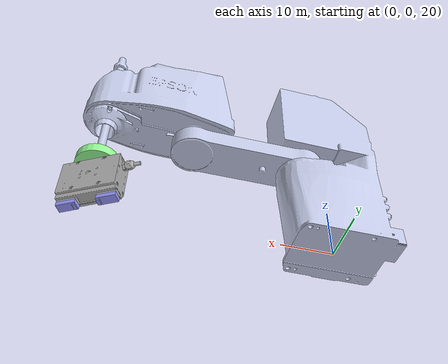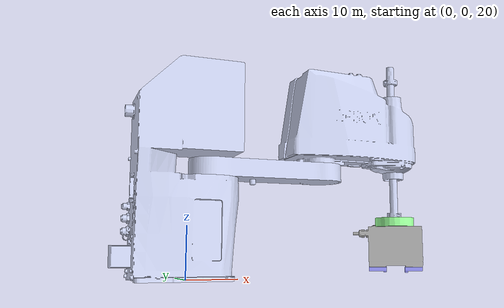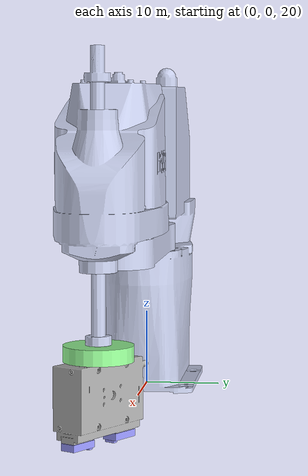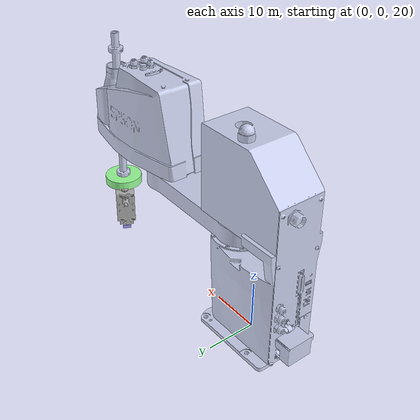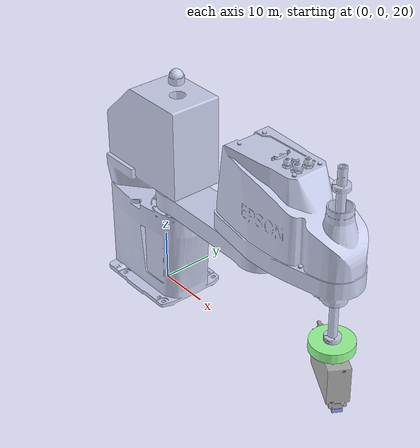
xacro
<?xml version="1.0"?>
<robot xmlns:xacro="http://www.ros.org/wiki/xacro" name="epson_t3">
    <xacro:arg name="initial_positions_file" default="initial_positions.yaml" />

    <!-- Import epson_t3 urdf file -->
    <xacro:include filename="$(find epson_t3_description)/urdf/epson_t3_description.urdf.xacro" />

    <!-- Import control_xacro -->
    <xacro:include filename="epson_t3.ros2_control.xacro" />

    <xacro:epson_t3_ros2_control name="FakeSystem" initial_positions_file="$(arg initial_positions_file)"/>

</robot>

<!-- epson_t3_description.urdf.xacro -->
<robot name="epson_t3" xmlns:xacro="http://www.ros.org/wiki/xacro">
  <xacro:arg name="gripper_type" default="tayo"/>
	<xacro:property name="gripper_type" value="$(arg gripper_type)" />
	<xacro:property name="scale_value" value="100.0"/>

  <link name="base_link">
    <visual>
      <origin xyz="0 0 0" rpy="0 0 0" />
      <geometry>
        <mesh filename="package://epson_t3_description/meshes/base_link.STL" scale="${scale_value} ${scale_value} ${scale_value}"/>
      </geometry>
      <material name="">
        <color rgba="0.792156862745098 0.819607843137255 0.933333333333333 1" />
      </material>
    </visual>
    <collision>
      <origin xyz="0 0 0" rpy="0 0 0" />
      <geometry>
        <mesh filename="package://epson_t3_description/meshes/base_link.STL" scale="${scale_value} ${scale_value} ${scale_value}"/>
      </geometry>
    </collision>
  </link>

  <link name="link_1">
    <visual>
      <origin xyz="0 0 0" rpy="0 0 0" />
      <geometry>
        <mesh filename="package://epson_t3_description/meshes/link_1.STL" scale="${scale_value} ${scale_value} ${scale_value}"/>
      </geometry>
      <material name="">
        <color rgba="0.792156862745098 0.819607843137255 0.933333333333333 1" />
      </material>
    </visual>
    <collision>
      <origin xyz="0 0 0" rpy="0 0 0" />
      <geometry>
        <mesh filename="package://epson_t3_description/meshes/link_1.STL" scale="${scale_value} ${scale_value} ${scale_value}"/>
      </geometry>
    </collision>
  </link>

  <link name="link_2">
    <visual>
      <origin xyz="0 0 0" rpy="0 0 0" />
      <geometry>
        <mesh filename="package://epson_t3_description/meshes/link_2.STL" scale="${scale_value} ${scale_value} ${scale_value}"/>
      </geometry>
      <material
        name="">
        <color rgba="0.792156862745098 0.819607843137255 0.933333333333333 1" />
      </material>
    </visual>
    <collision>
      <origin xyz="0 0 0" rpy="0 0 0" />
      <geometry>
        <mesh filename="package://epson_t3_description/meshes/link_2.STL" scale="${scale_value} ${scale_value} ${scale_value}"/>
      </geometry>
    </collision>
  </link>

  <link name="link_2_virtual">
  </link>

  <link name="link_3">
    <visual>
      <origin xyz="0 0 0" rpy="0 0 0" />
      <geometry>
        <mesh filename="package://epson_t3_description/meshes/link_3.STL" scale="${scale_value} ${scale_value} ${scale_value}"/>
      </geometry>
      <material
        name="">
        <color  rgba="0.792156862745098 0.819607843137255 0.933333333333333 1" />
      </material>
    </visual>
    <collision>
      <origin xyz="0 0 0" rpy="0 0 0" />
      <geometry>
        <mesh filename="package://epson_t3_description/meshes/link_3.STL" scale="${scale_value} ${scale_value} ${scale_value}"/>
      </geometry>
    </collision>
  </link>

  <joint name="joint_1" type="revolute">
    <origin xyz="${scale_value*0.14498} ${scale_value*-0.0016851} ${scale_value*0.1913}" rpy="1.5708 0 -0.011622" />
    <parent link="base_link" />
    <child link="link_1" />
    <axis xyz="0 1 0" />
    <limit lower="-2.0492" upper="2.0492" effort="1000" velocity="1" />
  </joint>

  <joint name="joint_2" type="revolute">
    <origin xyz="${scale_value*0.225} ${scale_value*0.0128} ${scale_value*-0.0016852}" rpy="0 0.023733 0" />
    <parent link="link_1" />
    <child link="link_2" />
    <axis xyz="0 1 0" />
    <limit lower="-2.4609" upper="2.4609" effort="0" velocity="1" />
  </joint>

  <joint name="joint_3" type="prismatic">
    <origin xyz="${scale_value*0.175} ${scale_value*0} 0" rpy="0 1.0337 0" />
    <parent link="link_2" />
    <child link="link_2_virtual" />
    <axis xyz="0 1 0" />
    <limit lower="${scale_value*-0.1200}" upper="${scale_value*-0.0220}" effort="10" velocity="0.1" />
  </joint>

  <joint name="joint_4" type="revolute">
    <origin xyz="0 0 0" rpy="0 0 -3.14" />
    <parent link="link_2_virtual" />
    <child link="link_3" />
    <axis xyz="0 1 0" />
    <limit lower="-3.14" upper="3.14" effort="0" velocity="0" />
  </joint>

	<xacro:if value="${gripper_type != 'none'}">
   	<xacro:include filename="$(find epson_t3_description)/urdf/${gripper_type}.urdf.xacro" />
  </xacro:if>

  <link name="world"/>
  <joint name="fixed" type="fixed">
    <parent link="world"/>
    <child link="base_link"/>
    <origin xyz="-10 0 20"/>
  </joint>

</robot>

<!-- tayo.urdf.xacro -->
<robot name="epson_t3" xmlns:xacro="http://www.ros.org/wiki/xacro">

	<link name="gripper_base">
		<visual>
			<origin rpy="0 0 1.57079632679" xyz="0 0 ${scale_value*0.07222}"/>
			<geometry>
				<mesh filename="package://epson_t3_description/meshes/visual/tool/ESG1-FS-2840.dae" scale="${scale_value} ${scale_value} ${scale_value}"/>
			</geometry>
		</visual>
		<collision>
			<origin rpy="0 0 1.57079632679" xyz="0 0 ${scale_value*0.042135}"/>
			<geometry>
				<box size="${scale_value*0.11095} ${scale_value*0.04021} ${scale_value*0.08427}"/>
			</geometry>
		</collision>
		<inertial>
			<mass value="1"/>
			<origin rpy="0.000000 0.000000 0.000000" xyz="0.000000 0.000000 0.000000"/>
			<inertia ixx="1" ixy="0" ixz="0" iyy="1" iyz="0" izz="1"/>
		</inertial>
	</link>

	<link name="robot_gripper_interface">
		<visual>
			<origin rpy="0 0 0" xyz="0 0 ${scale_value*0.00902}"/>
			<geometry>
				<cylinder length="${scale_value*0.01804}" radius="${scale_value*0.04}"/>
			</geometry>
			<material name="material_color_robot_gripper_interface">
				<color rgba="0.6 1 0.6 1"/>
			</material>
		</visual>
		<collision>
			<origin rpy="0 0 0" xyz="0 0 ${scale_value*0.00902}"/>
			<geometry>
				<cylinder length="${scale_value*0.01804}" radius="${scale_value*0.04}"/>
			</geometry>
		</collision>
	</link>

	<joint name="robot_to_gripper" type="fixed">
		<parent link="link_3"/>
		<child link="robot_gripper_interface"/>
		<origin rpy="-1.5708 0 0" xyz="0 1 0"/>
	</joint>

	<joint name="joint_gripper_base" type="fixed">
		<parent link="robot_gripper_interface"/>
		<child link="gripper_base"/>
		<origin rpy="0.000000 0.000000 0.000000" xyz="0.000000 0.000000 ${scale_value*0.01804}"/>
	</joint>

	<link name="left_finger">
		<visual>
		<origin rpy="0 0 0" xyz="0 0 ${scale_value*0.004045}"/>
			<geometry>
				<box size="${scale_value*0.03573} ${scale_value*0.01813} ${scale_value*0.00809}"/>
			</geometry>
			<material name="material_color_left_claw">
				<color rgba="0.6 0.6 1 1"/>
			</material>
		</visual>
		<collision>
			<origin rpy="0 0 0" xyz="0 0 ${scale_value*0.004045}"/>
			<geometry>
				<box size="${scale_value*0.03573} ${scale_value*0.01813} ${scale_value*0.00809}"/>
			</geometry>
		</collision>
	</link>
	<joint name="joint_gripper" type="prismatic">
		<parent link="gripper_base"/>
		<child link="left_finger"/>
		<origin rpy="0.000000 0.000000 1.57079632679" xyz="0 ${scale_value*0.036789} ${scale_value*0.08427}"/>
		<axis xyz="-1.000000 0.000000 -0.000000"/>
		<limit effort="${scale_value * 200000}" lower="0.000000" upper="${scale_value * 0.018819}" velocity="${scale_value * 18.000000}"/>
		<dynamics damping="0" friction="0"/>
	</joint>

	<link name="left_finger_tip">
		<visual>
		<origin rpy="0 0 0" xyz="0 0 0"/>
			<geometry>
				<box size="${scale_value*0.00610} ${scale_value*0.01260} ${scale_value*0.0055}"/>
			</geometry>
			<material name="material_color_left_finger_tip">
				<color rgba="0.6 0.6 1 1"/>
			</material>
		</visual>
		<collision>
			<origin rpy="0 0 0" xyz="0 0 0"/>
			<geometry>
				<box size="${scale_value*0.00610} ${scale_value*0.01260} ${scale_value*0.0055}"/>
			</geometry>
		</collision>
	</link>

	<joint name="gripper_left_graspping_tip" type="fixed">
		<parent link="left_finger"/>
		<child link="left_finger_tip"/>
		<origin rpy="0.000000 0.000000 0" xyz="-${scale_value*0.0148} 0 ${scale_value*0.00809}"/>
	</joint>

	<link name="right_finger">
		<collision>
			<origin rpy="0 0 0" xyz="0 0 ${scale_value*0.004045}"/>
			<geometry>
				<box size="${scale_value*0.03573} ${scale_value*0.01813} ${scale_value*0.00809}"/>
			</geometry>
		</collision>
		<visual>
			<origin rpy="0 0 0" xyz="0 0 ${scale_value*0.004045}"/>
			<geometry>
				<box size="${scale_value*0.03573} ${scale_value*0.01813} ${scale_value*0.00809}"/>
			</geometry>
			<material name="material_color_right_claw">
				<color rgba="0.6 0.6 1 1"/>
			</material>
		</visual>
	</link>
	<joint name="joint_gripper_mimic" type="prismatic">
		<parent link="gripper_base"/>
		<child link="right_finger"/>
		<mimic joint="joint_gripper" multiplier="-1.000000" offset="0.000000"/>
		<origin rpy="0.000000 0.000000 1.57079632679" xyz="0 -${scale_value*0.036789} ${scale_value*0.08427}"/>
		<axis xyz="-1.000000 0.000000 -0.000000"/>
		<limit effort="${scale_value * 200000}" lower="-${scale_value * 0.018819}" upper="0.000000" velocity="${scale_value * 18.00000}"/>
		<dynamics damping="0" friction="0"/>
	</joint>

	<link name="right_finger_tip">
		<visual>
		<origin rpy="0 0 0" xyz="0 0 0"/>
			<geometry>
				<box size="${scale_value*0.00610} ${scale_value*0.01260} ${scale_value*0.0055}"/>
			</geometry>
			<material name="material_color_right_finger_tip">
				<color rgba="0.6 0.6 1 1"/>
			</material>
		</visual>
		<collision>
			<origin rpy="0 0 0" xyz="0 0 0"/>
			<geometry>
				<box size="${scale_value*0.00610} ${scale_value*0.01260} ${scale_value*0.0055}"/>
			</geometry>
		</collision>
	</link>

	<joint name="gripper_right_graspping_tip" type="fixed">
		<parent link="right_finger"/>
		<child link="right_finger_tip"/>
		<origin rpy="0.000000 0.000000 0" xyz="${scale_value*0.0148} 0 ${scale_value*0.00809}"/>
	</joint>

	<link name="gripper_tip"/>
	<joint name="joint_tip" type="fixed">
		<parent link="gripper_base"/>
		<child link="gripper_tip"/>
		<origin rpy="0.000000 0.000000 0.000000" xyz="0.000000 0.000000 ${scale_value*0.09511}"/>
	</joint>

</robot>
